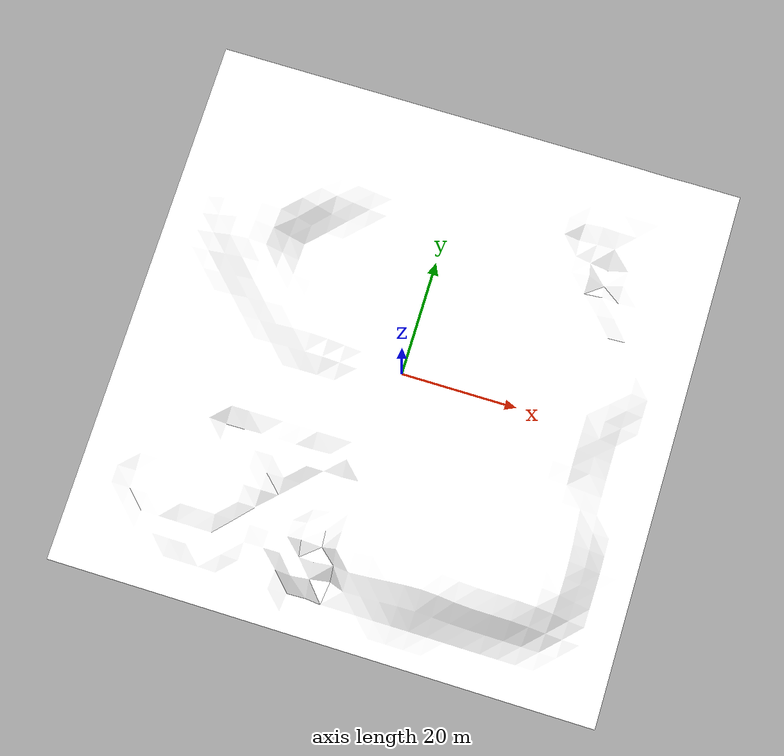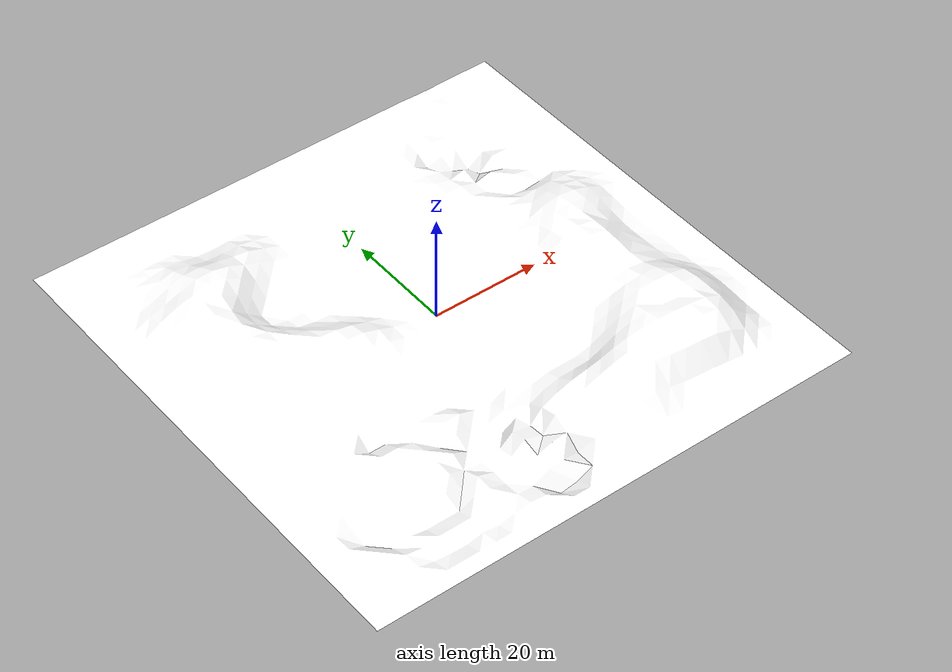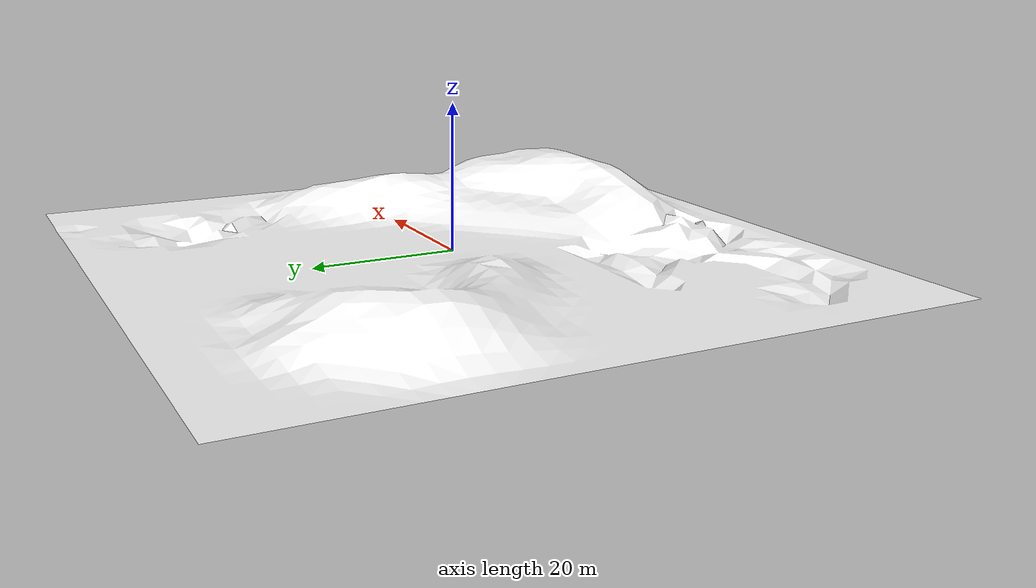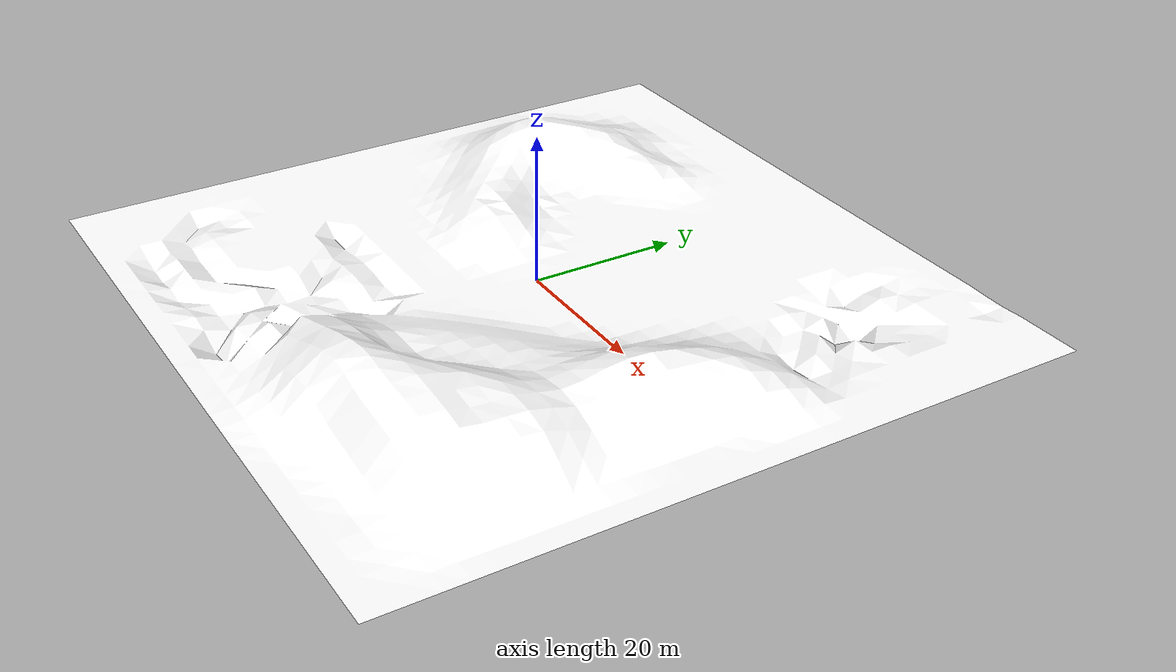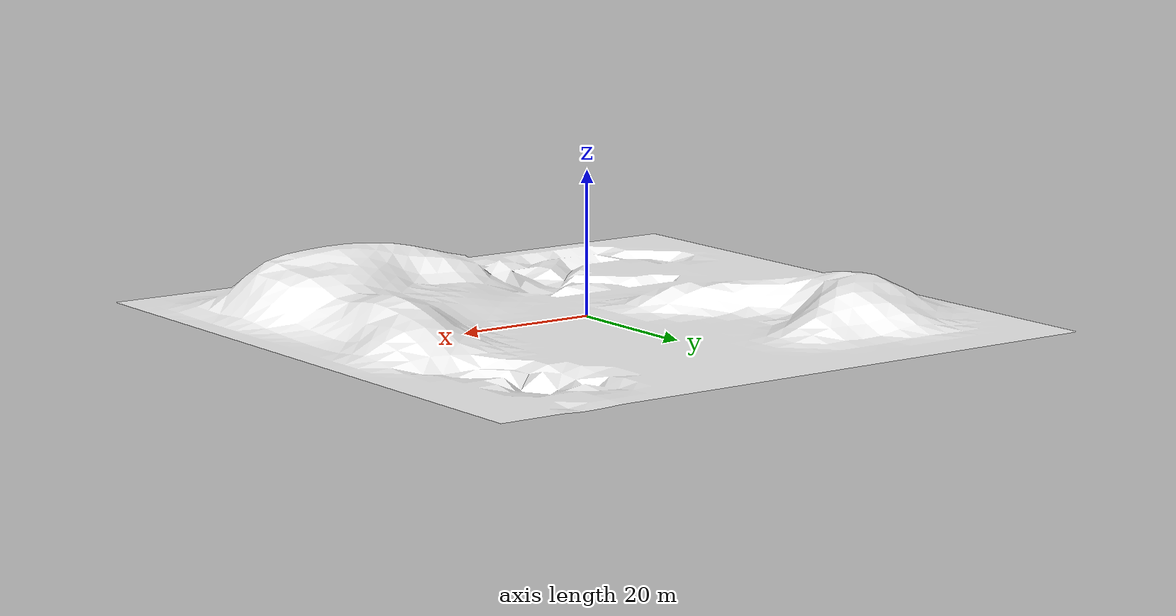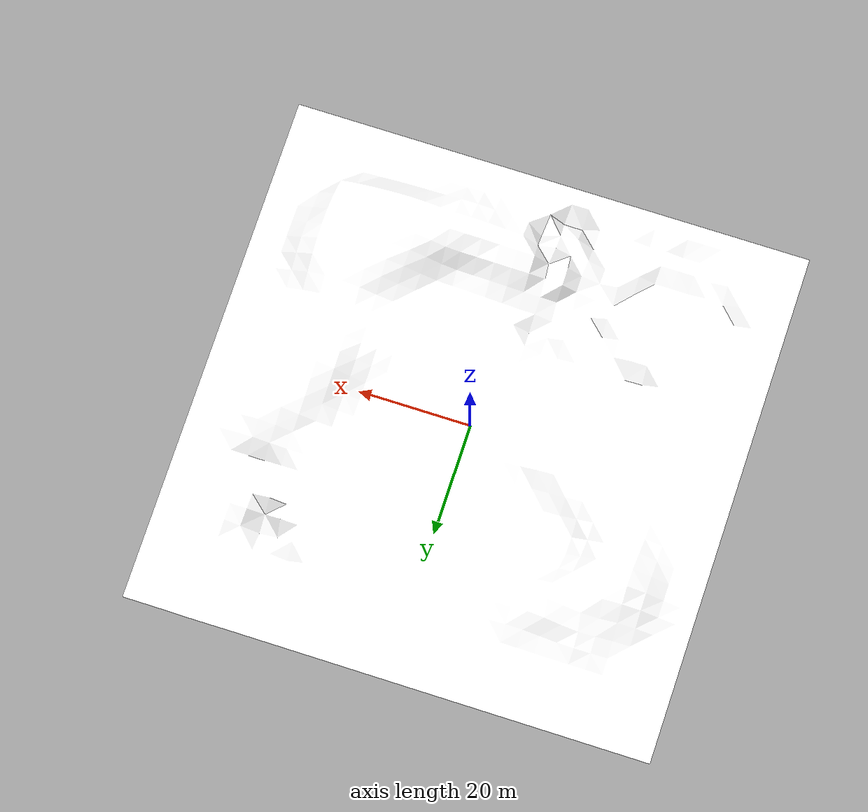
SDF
<sdf version="1.7">
<model name="forest_plane">
    <static>true</static>
    <link name="link">
        <collision name="collision">
            <geometry>
            <box>
                <normal>0 0 1</normal>
                <size>25 25 0.01</size>
            </box>
            </geometry>
        </collision>
        <visual name="visual">
            <cast_shadows>false</cast_shadows>
                <geometry>
                <mesh>
                    <uri>model://forest_plane/meshes/RS1_environment.dae</uri>
                    <scale>10 10 10</scale>
                </mesh>
                </geometry>
            <material>
                <ambient>1.0 1.0 1.0 1</ambient>
                <diffuse>1.0 1.0 1.0 1</diffuse>
                <pbr>
                    <metal>
                    <albedo_map>
                        model://forest_plane/materials/textures/forest_overhead.png
                    </albedo_map>
                    </metal>
                </pbr>
            </material>
        </visual>
    </link>
</model>
</sdf>
